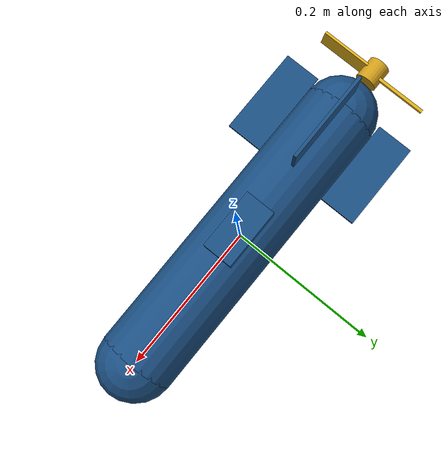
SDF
<?xml version="1.0" ?>
<sdf version="1.6">
  <world name="world">
    <model name="submarine">
      <pose>0 0 0 0 0 0</pose>

      <link name="base_link">
        <pose>0 0 0 0 0 0</pose>
        <inertial>
          <pose>0 0 0 0 0 0</pose>
          <mass>3.141592653589793</mass>
          <inertia>
            <ixx>0.003926990816987241</ixx>
            <ixy>0</ixy>
            <ixz>0</ixz>
            <iyy>0.04385139745635753</iyy>
            <iyz>0</iyz>
            <izz>0.04385139745635753</izz>
          </inertia>
        </inertial>
        <collision name="base_link_collision">
          <pose>0 0 0 0 1.5707963267948966 0</pose>
          <geometry>
            <cylinder>
              <radius>0.05</radius>
              <length>0.4</length>
            </cylinder>
          </geometry>
        </collision>
        <collision name="conning_tower_collision">
          <pose>0 0 0.05 0 0 0</pose>
          <geometry>
            <box>
              <size>0.08 0.04 0.04</size>
            </box>
          </geometry>
        </collision>
        <visual name="base_link_visual">
          <pose>0 0 0 0 1.5707963267948966 0</pose>
          <geometry>
            <cylinder>
              <radius>0.05</radius>
              <length>0.4</length>
            </cylinder>
          </geometry>
          <material>
            <ambient>0.1 0.3 0.5 1</ambient>
            <diffuse>0.1 0.3 0.5 1</diffuse>
            <specular>0.4 0.4 0.4 1</specular>
            <emissive>0 0 0 1</emissive>
          </material>
        </visual>
        <visual name="conning_tower_visual">
          <pose>0 0 0.05 0 0 0</pose>
          <geometry>
            <box>
              <size>0.08 0.04 0.04</size>
            </box>
          </geometry>
          <material>
            <ambient>0.1 0.3 0.5 1</ambient>
            <diffuse>0.1 0.3 0.5 1</diffuse>
            <specular>0.4 0.4 0.4 1</specular>
            <emissive>0 0 0 1</emissive>
          </material>
        </visual>
        <visual name="nose_visual">
          <pose>0.2 0 0 0 0 0</pose>
          <geometry>
            <sphere>
              <radius>0.05</radius>
            </sphere>
          </geometry>
          <material>
            <ambient>0.1 0.3 0.5 1</ambient>
            <diffuse>0.1 0.3 0.5 1</diffuse>
            <specular>0.4 0.4 0.4 1</specular>
            <emissive>0 0 0 1</emissive>
          </material>
        </visual>
        <visual name="tail_visual">
          <pose>-0.2 0 0 0 0 0</pose>
          <geometry>
            <sphere>
              <radius>0.05</radius>
            </sphere>
          </geometry>
          <material>
            <ambient>0.1 0.3 0.5 1</ambient>
            <diffuse>0.1 0.3 0.5 1</diffuse>
            <specular>0.4 0.4 0.4 1</specular>
            <emissive>0 0 0 1</emissive>
          </material>
        </visual>
      </link>

      <link name="fin_top">
        <pose>-0.16 0 0.075 0 0 0</pose>
        <inertial>
          <pose>0 0 0 0 0 0</pose>
          <mass>0.024</mass>
          <inertia>
            <ixx>5.032e-06</ixx>
            <ixy>0</ixy>
            <ixz>0</ixz>
            <iyy>3.38e-05</iyy>
            <iyz>0</iyz>
            <izz>2.8832e-05</izz>
          </inertia>
        </inertial>
        <collision name="fin_top_collision">
          <geometry>
            <box>
              <size>0.12 0.004 0.05</size>
            </box>
          </geometry>
        </collision>
        <visual name="fin_top_visual">
          <geometry>
            <box>
              <size>0.12 0.004 0.05</size>
            </box>
          </geometry>
          <material>
            <ambient>0.1 0.3 0.5 1</ambient>
            <diffuse>0.1 0.3 0.5 1</diffuse>
            <specular>0.4 0.4 0.4 1</specular>
            <emissive>0 0 0 1</emissive>
          </material>
        </visual>
      </link>

      <link name="fin_bottom">
        <pose>-0.16 0 -0.075 0 0 0</pose>
        <inertial>
          <pose>0 0 0 0 0 0</pose>
          <mass>0.024</mass>
          <inertia>
            <ixx>5.032e-06</ixx>
            <ixy>0</ixy>
            <ixz>0</ixz>
            <iyy>3.38e-05</iyy>
            <iyz>0</iyz>
            <izz>2.8832e-05</izz>
          </inertia>
        </inertial>
        <collision name="fin_bottom_collision">
          <geometry>
            <box>
              <size>0.12 0.004 0.05</size>
            </box>
          </geometry>
        </collision>
        <visual name="fin_bottom_visual">
          <geometry>
            <box>
              <size>0.12 0.004 0.05</size>
            </box>
          </geometry>
          <material>
            <ambient>0.1 0.3 0.5 1</ambient>
            <diffuse>0.1 0.3 0.5 1</diffuse>
            <specular>0.4 0.4 0.4 1</specular>
            <emissive>0 0 0 1</emissive>
          </material>
        </visual>
      </link>

      <link name="fin_port">
        <pose>-0.16 0.075 0 0 0 0</pose>
        <inertial>
          <pose>0 0 0 0 0 0</pose>
          <mass>0.024</mass>
          <inertia>
            <ixx>5.032e-06</ixx>
            <ixy>0</ixy>
            <ixz>0</ixz>
            <iyy>2.8832e-05</iyy>
            <iyz>0</iyz>
            <izz>3.38e-05</izz>
          </inertia>
        </inertial>
        <collision name="fin_port_collision">
          <geometry>
            <box>
              <size>0.12 0.05 0.004</size>
            </box>
          </geometry>
        </collision>
        <visual name="fin_port_visual">
          <geometry>
            <box>
              <size>0.12 0.05 0.004</size>
            </box>
          </geometry>
          <material>
            <ambient>0.1 0.3 0.5 1</ambient>
            <diffuse>0.1 0.3 0.5 1</diffuse>
            <specular>0.4 0.4 0.4 1</specular>
            <emissive>0 0 0 1</emissive>
          </material>
        </visual>
      </link>

      <link name="fin_starboard">
        <pose>-0.16 -0.075 0 0 0 0</pose>
        <inertial>
          <pose>0 0 0 0 0 0</pose>
          <mass>0.024</mass>
          <inertia>
            <ixx>5.032e-06</ixx>
            <ixy>0</ixy>
            <ixz>0</ixz>
            <iyy>2.8832e-05</iyy>
            <iyz>0</iyz>
            <izz>3.38e-05</izz>
          </inertia>
        </inertial>
        <collision name="fin_starboard_collision">
          <geometry>
            <box>
              <size>0.12 0.05 0.004</size>
            </box>
          </geometry>
        </collision>
        <visual name="fin_starboard_visual">
          <geometry>
            <box>
              <size>0.12 0.05 0.004</size>
            </box>
          </geometry>
          <material>
            <ambient>0.1 0.3 0.5 1</ambient>
            <diffuse>0.1 0.3 0.5 1</diffuse>
            <specular>0.4 0.4 0.4 1</specular>
            <emissive>0 0 0 1</emissive>
          </material>
        </visual>
      </link>

      <link name="propeller_hub">
        <pose>-0.27 0 0 0 0 0</pose>
        <inertial>
          <pose>0 0 0 0 0 0</pose>
          <mass>0.021205750411731104</mass>
          <inertia>
            <ixx>2.385646921319749e-06</ixx>
            <ixy>0</ixy>
            <ixz>0</ixz>
            <iyy>2.784321474773041e-06</iyy>
            <iyz>0</iyz>
            <izz>2.784321474773041e-06</izz>
          </inertia>
        </inertial>
        <collision name="propeller_hub_collision">
          <pose>0 0 0 0 1.5707963267948966 0</pose>
          <geometry>
            <cylinder>
              <radius>0.015</radius>
              <length>0.03</length>
            </cylinder>
          </geometry>
        </collision>
        <visual name="propeller_hub_visual">
          <pose>0 0 0 0 1.5707963267948966 0</pose>
          <geometry>
            <cylinder>
              <radius>0.015</radius>
              <length>0.03</length>
            </cylinder>
          </geometry>
          <material>
            <ambient>0.8 0.6 0.1 1</ambient>
            <diffuse>0.8 0.6 0.1 1</diffuse>
            <specular>0.4 0.4 0.4 1</specular>
            <emissive>0 0 0 1</emissive>
          </material>
        </visual>
      </link>

      <link name="blade_0">
        <pose>-0.27 0.04 0 0 0.3 0</pose>
        <inertial>
          <pose>0 0 0 0 0 0</pose>
          <mass>0.0064</mass>
          <inertia>
            <ixx>3.626666666666667e-06</ixx>
            <ixy>0</ixy>
            <ixz>0</ixz>
            <iyy>2.218666666666667e-07</iyy>
            <iyz>0</iyz>
            <izz>3.421333333333333e-06</izz>
          </inertia>
        </inertial>
        <collision name="blade_0_collision">
          <geometry>
            <box>
              <size>0.004 0.08 0.02</size>
            </box>
          </geometry>
        </collision>
        <visual name="blade_0_visual">
          <geometry>
            <box>
              <size>0.004 0.08 0.02</size>
            </box>
          </geometry>
          <material>
            <ambient>0.9 0.7 0.1 1</ambient>
            <diffuse>0.9 0.7 0.1 1</diffuse>
            <specular>0.4 0.4 0.4 1</specular>
            <emissive>0 0 0 1</emissive>
          </material>
        </visual>
      </link>

      <link name="blade_1">
        <pose>-0.27 -0.04 0 0 -0.3 0</pose>
        <inertial>
          <pose>0 0 0 0 0 0</pose>
          <mass>0.0064</mass>
          <inertia>
            <ixx>3.626666666666667e-06</ixx>
            <ixy>0</ixy>
            <ixz>0</ixz>
            <iyy>2.218666666666667e-07</iyy>
            <iyz>0</iyz>
            <izz>3.421333333333333e-06</izz>
          </inertia>
        </inertial>
        <collision name="blade_1_collision">
          <geometry>
            <box>
              <size>0.004 0.08 0.02</size>
            </box>
          </geometry>
        </collision>
        <visual name="blade_1_visual">
          <geometry>
            <box>
              <size>0.004 0.08 0.02</size>
            </box>
          </geometry>
          <material>
            <ambient>0.9 0.7 0.1 1</ambient>
            <diffuse>0.9 0.7 0.1 1</diffuse>
            <specular>0.4 0.4 0.4 1</specular>
            <emissive>0 0 0 1</emissive>
          </material>
        </visual>
      </link>

      <joint name="joint_fin_top" type="fixed">
        <parent>base_link</parent>
        <child>fin_top</child>
        <pose>0 0 0 0 0 0</pose>
      </joint>
      <joint name="joint_fin_bottom" type="fixed">
        <parent>base_link</parent>
        <child>fin_bottom</child>
        <pose>0 0 0 0 0 0</pose>
      </joint>
      <joint name="joint_fin_port" type="fixed">
        <parent>base_link</parent>
        <child>fin_port</child>
        <pose>0 0 0 0 0 0</pose>
      </joint>
      <joint name="joint_fin_starboard" type="fixed">
        <parent>base_link</parent>
        <child>fin_starboard</child>
        <pose>0 0 0 0 0 0</pose>
      </joint>

      <joint name="joint_propeller" type="revolute">
        <parent>base_link</parent>
        <child>propeller_hub</child>
        <pose>0 0 0 0 0 0</pose>
        <axis>
          <xyz>1 0 0</xyz>
          <limit>
            <lower>-1e16</lower>
            <upper>1e16</upper>
          </limit>
        </axis>
      </joint>
      <joint name="joint_blade_0" type="fixed">
        <parent>propeller_hub</parent>
        <child>blade_0</child>
        <pose>0 0 0 0 0 0</pose>
      </joint>
      <joint name="joint_blade_1" type="fixed">
        <parent>propeller_hub</parent>
        <child>blade_1</child>
        <pose>0 0 0 0 0 0</pose>
      </joint>
    </model>
  </world>
</sdf>
